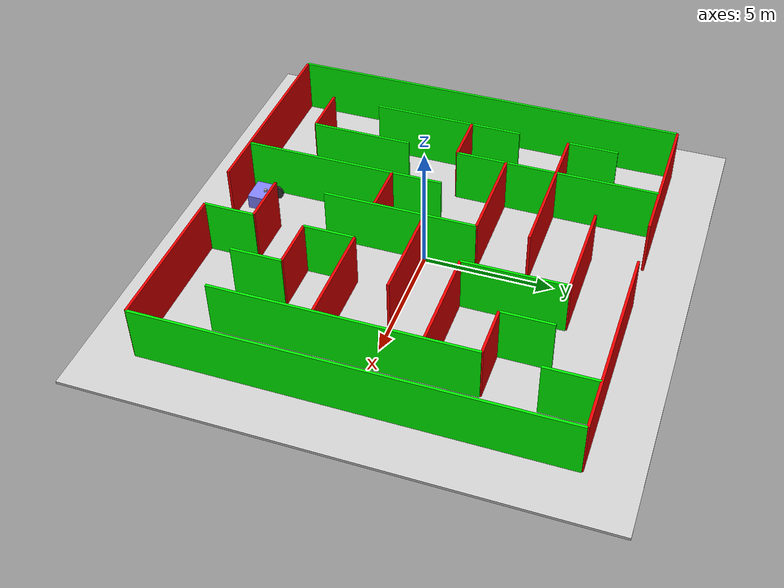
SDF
<?xml version="1.0" ?>
<!--
  You can echo lidar messages using:
    gz topic -e -t /lidar
-->
<sdf version="1.10">
  <world name="visualize_lidar_world">
    <physics name="1ms" type="ignored">
      <max_step_size>0.01</max_step_size>
      <real_time_factor>1.0</real_time_factor>
    </physics>
    <plugin
      filename="gz-sim-physics-system"
      name="gz::sim::systems::Physics">
    </plugin>
    <plugin
      filename="gz-sim-sensors-system"
      name="gz::sim::systems::Sensors">
      <render_engine>ogre2</render_engine>
    </plugin>
    <plugin
      filename="gz-sim-scene-broadcaster-system"
      name="gz::sim::systems::SceneBroadcaster">
    </plugin>

    <gui fullscreen="true">

      <!-- 3D scene -->
      <plugin filename="MinimalScene" name="3D View">
        <gz-gui>
          <title>3D View</title>
          <property type="bool" key="showTitleBar">false</property>
          <property type="string" key="state">docked</property>
        </gz-gui>

        <engine>ogre2</engine>
        <scene>scene</scene>
        <ambient_light>0.4 0.4 0.4</ambient_light>
        <background_color>0.8 0.8 0.8</background_color>
        <camera_pose>0 0 10 0 1.570796 0</camera_pose>
      </plugin>

      <!-- Plugins that add functionality to the scene -->
      <plugin filename="EntityContextMenuPlugin" name="Entity context menu">
        <gz-gui>
          <property key="state" type="string">floating</property>
          <property key="width" type="double">5</property>
          <property key="height" type="double">5</property>
          <property key="showTitleBar" type="bool">false</property>
        </gz-gui>
      </plugin>
      <plugin filename="GzSceneManager" name="Scene Manager">
        <gz-gui>
          <property key="resizable" type="bool">false</property>
          <property key="width" type="double">5</property>
          <property key="height" type="double">5</property>
          <property key="state" type="string">floating</property>
          <property key="showTitleBar" type="bool">false</property>
        </gz-gui>
      </plugin>
      <plugin filename="InteractiveViewControl" name="Interactive view control">
        <gz-gui>
          <property key="resizable" type="bool">false</property>
          <property key="width" type="double">5</property>
          <property key="height" type="double">5</property>
          <property key="state" type="string">floating</property>
          <property key="showTitleBar" type="bool">false</property>
        </gz-gui>
      </plugin>
      <plugin filename="CameraTracking" name="Camera Tracking">
        <gz-gui>
          <property key="resizable" type="bool">false</property>
          <property key="width" type="double">5</property>
          <property key="height" type="double">5</property>
          <property key="state" type="string">floating</property>
          <property key="showTitleBar" type="bool">false</property>
        </gz-gui>
      </plugin>
      <!-- World control -->
      <plugin filename="WorldControl" name="World control">
        <gz-gui>
          <title>World control</title>
          <property type="bool" key="showTitleBar">false</property>
          <property type="bool" key="resizable">false</property>
          <property type="double" key="height">72</property>
          <property type="double" key="z">1</property>

          <property type="string" key="state">floating</property>
          <anchors target="3D View">
            <line own="left" target="left"/>
            <line own="bottom" target="bottom"/>
          </anchors>
        </gz-gui>

        <play_pause>true</play_pause>
        <step>true</step>
        <start_paused>true</start_paused>
        <use_event>true</use_event>

      </plugin>

      <!-- World statistics -->
      <plugin filename="WorldStats" name="World stats">
        <gz-gui>
          <title>World stats</title>
          <property type="bool" key="showTitleBar">false</property>
          <property type="bool" key="resizable">false</property>
          <property type="double" key="height">110</property>
          <property type="double" key="width">290</property>
          <property type="double" key="z">1</property>

          <property type="string" key="state">floating</property>
          <anchors target="3D View">
            <line own="right" target="right"/>
            <line own="bottom" target="bottom"/>
          </anchors>
        </gz-gui>

        <sim_time>true</sim_time>
        <real_time>true</real_time>
        <real_time_factor>true</real_time_factor>
        <iterations>true</iterations>
      </plugin>

    </gui>

    <light type="directional" name="sun">
      <cast_shadows>true</cast_shadows>
      <pose>0 0 10 0 0 0</pose>
      <diffuse>0.8 0.8 0.8 1</diffuse>
      <specular>0.2 0.2 0.2 1</specular>
      <attenuation>
        <range>1000</range>
        <constant>0.9</constant>
        <linear>0.01</linear>
        <quadratic>0.001</quadratic>
      </attenuation>
      <direction>-0.5 0.1 -0.9</direction>
    </light>

    <model name="ground_plane">
      <pose>0 0 0 0 0 0</pose>
      <static>true</static>
      <link name="link">
        <collision name="collision">
          <geometry>
            <box>
              <size>18 18 0.1</size>
            </box>
          </geometry>
        </collision>
        <visual name="visual">
          <geometry>
            <box>
              <size>20 20 0.1</size>
            </box>
          </geometry>
          <material>
            <ambient>0.8 0.8 0.8 1</ambient>
            <diffuse>0.8 0.8 0.8 1</diffuse>
            <specular>0.8 0.8 0.8 1</specular>
          </material>
        </visual>
      </link>
    </model>

    <model name='vehicle_blue'>
      <pose>-1 -7 0.325 0 0 1.57</pose>
      <link name='chassis'>
        <pose>-0.151427 -0 0.175 0 -0 0</pose>
        <inertial>
          <mass>1.14395</mass>
          <inertia>
            <ixx>0.126164</ixx>
            <ixy>0</ixy>
            <ixz>0</ixz>
            <iyy>0.416519</iyy>
            <iyz>0</iyz>
            <izz>0.481014</izz>
          </inertia>
        </inertial>
        <visual name='visual'>
          <geometry>
            <box>
              <size>0.8 1 0.568726</size>
            </box>
          </geometry>
          <material>
            <ambient>0.5 0.5 1.0 1</ambient>
            <diffuse>0.5 0.5 1.0 1</diffuse>
            <specular>0.0 0.0 1.0 1</specular>
          </material>
        </visual>
        <collision name='collision'>
          <geometry>
            <box>
              <size>0.8 1 0.568726</size>
            </box>
          </geometry>
        </collision>
      </link>

      <link name="lidar_link">
        <pose>0 0 0.5 0 0 0</pose>
        <inertial>
          <mass>0.1</mass>
          <inertia>
            <ixx>0.000166667</ixx>
            <iyy>0.000166667</iyy>
            <izz>0.000166667</izz>
          </inertia>
        </inertial>
        <collision name="collision">
          <geometry>
            <box>
              <size>0.1 0.1 0.1</size>
            </box>
          </geometry>
        </collision>
        <visual name="visual">
          <geometry>
            <box>
              <size>0.1 0.1 0.1</size>
            </box>
          </geometry>
        </visual>
        <sensor name='gpu_lidar' type='gpu_lidar'>
        <pose>0 0 0 0 0 0</pose>
          <topic>lidar</topic>
          <update_rate>10</update_rate>
          <lidar>
            <scan>
              <horizontal>
                <samples>80</samples>
                <resolution>1</resolution>
                <min_angle>0</min_angle>
                <max_angle>6.28</max_angle>
              </horizontal>
              <vertical>
                <samples>1</samples>
                <resolution>1</resolution>
                <min_angle>0.0</min_angle>
                <max_angle>0.0</max_angle>
              </vertical>
            </scan>
            <range>
              <min>0.08</min>
              <max>12</max>
              <resolution>0.005</resolution>
            </range>
          </lidar>
        </sensor>
      </link>

      <link name='left_wheel'>
        <pose>0.154283 0.625029 -0.025 -1.5707 0 0</pose>
        <inertial>
          <mass>2</mass>
          <inertia>
            <ixx>0.145833</ixx>
            <ixy>0</ixy>
            <ixz>0</ixz>
            <iyy>0.145833</iyy>
            <iyz>0</iyz>
            <izz>0.125</izz>
          </inertia>
        </inertial>
        <visual name='visual'>
          <geometry>
            <cylinder>
              <radius>0.3</radius>
              <length>0.1</length>
            </cylinder>
          </geometry>
          <material>
            <ambient>0.2 0.2 0.2 1</ambient>
            <diffuse>0.2 0.2 0.2 1</diffuse>
            <specular>0.2 0.2 0.2 1</specular>
          </material>
        </visual>
        <collision name='collision'>
          <geometry>
            <cylinder>
              <radius>0.3</radius>
              <length>0.1</length>
            </cylinder>
          </geometry>
        </collision>
      </link>

      <link name='right_wheel'>
        <pose>0.154282 -0.625029 -0.025 -1.5707 0 0</pose>
        <inertial>
          <mass>2</mass>
          <inertia>
            <ixx>0.145833</ixx>
            <ixy>0</ixy>
            <ixz>0</ixz>
            <iyy>0.145833</iyy>
            <iyz>0</iyz>
            <izz>0.125</izz>
          </inertia>
        </inertial>
        <visual name='visual'>
          <geometry>
            <cylinder>
              <radius>0.3</radius>
              <length>0.1</length>
            </cylinder>
          </geometry>
          <material>
            <ambient>0.2 0.2 0.2 1</ambient>
            <diffuse>0.2 0.2 0.2 1</diffuse>
            <specular>0.2 0.2 0.2 1</specular>
          </material>
        </visual>
        <collision name='collision'>
          <geometry>
            <cylinder>
              <radius>0.3</radius>
              <length>0.1</length>
            </cylinder>
          </geometry>
        </collision>
      </link>

      <link name='caster'>
        <pose>-0.457138 -0 -0.125 0 -0 0</pose>
        <inertial>
          <mass>1</mass>
          <inertia>
            <ixx>0.1</ixx>
            <ixy>0</ixy>
            <ixz>0</ixz>
            <iyy>0.1</iyy>
            <iyz>0</iyz>
            <izz>0.1</izz>
          </inertia>
        </inertial>
        <visual name='visual'>
          <geometry>
            <sphere>
              <radius>0.2</radius>
            </sphere>
          </geometry>
          <material>
            <ambient>0.2 0.2 0.2 1</ambient>
            <diffuse>0.2 0.2 0.2 1</diffuse>
            <specular>0.2 0.2 0.2 1</specular>
          </material>
        </visual>
        <collision name='collision'>
          <geometry>
            <sphere>
              <radius>0.2</radius>
            </sphere>
          </geometry>
        </collision>
      </link>

      <joint name='lidar_sensor_joint' type='fixed'>
        <parent>chassis</parent>
        <child>lidar_link</child>
      </joint>

      <joint name='left_wheel_joint' type='revolute'>
        <parent>chassis</parent>
        <child>left_wheel</child>
        <axis>
          <xyz>0 0 1</xyz>
          <limit>
            <lower>-1.79769e+308</lower>
            <upper>1.79769e+308</upper>
          </limit>
        </axis>
      </joint>

      <joint name='right_wheel_joint' type='revolute'>
        <parent>chassis</parent>
        <child>right_wheel</child>
        <axis>
          <xyz>0 0 1</xyz>
          <limit>
            <lower>-1.79769e+308</lower>
            <upper>1.79769e+308</upper>
          </limit>
        </axis>
      </joint>

      <joint name='caster_wheel' type='ball'>
        <parent>chassis</parent>
        <child>caster</child>
      </joint>

      <plugin
        filename="gz-sim-diff-drive-system"
        name="gz::sim::systems::DiffDrive">
        <left_joint>left_wheel_joint</left_joint>
        <right_joint>right_wheel_joint</right_joint>
        <wheel_separation>1.25</wheel_separation>
        <wheel_radius>0.3</wheel_radius>
        <odom_publish_frequency>50</odom_publish_frequency>
      </plugin>
    </model>

    <include>
      <pose>-8 -8 0 0 0 0</pose>
      <uri>sim/maze2.sdf</uri>
    </include>
  </world>
</sdf>

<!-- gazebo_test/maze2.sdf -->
<sdf version="1.6">
  <model name="maze2">
    <static>true</static>
        <link name="floor">
            <pose>8.0 8.0 0 0 0 0</pose>
            <collision name="floor_collision">
                <geometry>
                <plane>
                    <normal>0 0 1</normal>
                    <size>16.0 16.0</size>
                </plane>
                </geometry>
            </collision>
            <visual name="floor_visual">
                <geometry>
                <plane>
                    <normal>0 0 1</normal>
                    <size>16.0 16.0</size>
                </plane>
                </geometry>
            </visual>
        </link>    <link name="wall_0">
      <pose>4.0 0.0 1.0 0 0 0</pose>
      <collision name="wall_0_collision">
        <geometry>
          <box>
            <size>8.0 0.1 2.5</size>
          </box>
        </geometry>
      </collision>
      <visual name="wall_0_visual">
        <geometry>
          <box>
            <size>8.0 0.1 2.5</size>
          </box>
        </geometry>
        <material>
          <ambient>1 0 0 1</ambient>
          <diffuse>1 0 0 1</diffuse>
          <specular>0.1 0.1 0.1 1</specular>
          <emissive>0 0 0 1</emissive>
        </material>
      </visual>
    </link>    <link name="wall_1">
      <pose>13.0 0.0 1.0 0 0 0</pose>
      <collision name="wall_1_collision">
        <geometry>
          <box>
            <size>6.0 0.1 2.5</size>
          </box>
        </geometry>
      </collision>
      <visual name="wall_1_visual">
        <geometry>
          <box>
            <size>6.0 0.1 2.5</size>
          </box>
        </geometry>
        <material>
          <ambient>1 0 0 1</ambient>
          <diffuse>1 0 0 1</diffuse>
          <specular>0.1 0.1 0.1 1</specular>
          <emissive>0 0 0 1</emissive>
        </material>
      </visual>
    </link>    <link name="wall_2">
      <pose>0.0 8.0 1.0 0 0 1.5707963267948966</pose>
      <collision name="wall_2_collision">
        <geometry>
          <box>
            <size>16.0 0.1 2.5</size>
          </box>
        </geometry>
      </collision>
      <visual name="wall_2_visual">
        <geometry>
          <box>
            <size>16.0 0.1 2.5</size>
          </box>
        </geometry>
        <material>
          <ambient>0 1 0 1</ambient>
          <diffuse>0 1 0 1</diffuse>
          <specular>0.1 0.1 0.1 1</specular>
          <emissive>0 0 0 1</emissive>
        </material>
      </visual>
    </link>    <link name="wall_3">
      <pose>16.0 8.0 1.0 0 0 1.5707963267948966</pose>
      <collision name="wall_3_collision">
        <geometry>
          <box>
            <size>16.0 0.1 2.5</size>
          </box>
        </geometry>
      </collision>
      <visual name="wall_3_visual">
        <geometry>
          <box>
            <size>16.0 0.1 2.5</size>
          </box>
        </geometry>
        <material>
          <ambient>0 1 0 1</ambient>
          <diffuse>0 1 0 1</diffuse>
          <specular>0.1 0.1 0.1 1</specular>
          <emissive>0 0 0 1</emissive>
        </material>
      </visual>
    </link>    <link name="wall_4">
      <pose>3.0 16.0 1.0 0 0 0</pose>
      <collision name="wall_4_collision">
        <geometry>
          <box>
            <size>6.0 0.1 2.5</size>
          </box>
        </geometry>
      </collision>
      <visual name="wall_4_visual">
        <geometry>
          <box>
            <size>6.0 0.1 2.5</size>
          </box>
        </geometry>
        <material>
          <ambient>1 0 0 1</ambient>
          <diffuse>1 0 0 1</diffuse>
          <specular>0.1 0.1 0.1 1</specular>
          <emissive>0 0 0 1</emissive>
        </material>
      </visual>
    </link>    <link name="wall_5">
      <pose>12.0 16.0 1.0 0 0 0</pose>
      <collision name="wall_5_collision">
        <geometry>
          <box>
            <size>8.0 0.1 2.5</size>
          </box>
        </geometry>
      </collision>
      <visual name="wall_5_visual">
        <geometry>
          <box>
            <size>8.0 0.1 2.5</size>
          </box>
        </geometry>
        <material>
          <ambient>1 0 0 1</ambient>
          <diffuse>1 0 0 1</diffuse>
          <specular>0.1 0.1 0.1 1</specular>
          <emissive>0 0 0 1</emissive>
        </material>
      </visual>
    </link>    <link name="wall_6">
      <pose>3.0 2.0 1.0 0 0 0</pose>
      <collision name="wall_6_collision">
        <geometry>
          <box>
            <size>2.0 0.1 2.5</size>
          </box>
        </geometry>
      </collision>
      <visual name="wall_6_visual">
        <geometry>
          <box>
            <size>2.0 0.1 2.5</size>
          </box>
        </geometry>
        <material>
          <ambient>1 0 0 1</ambient>
          <diffuse>1 0 0 1</diffuse>
          <specular>0.1 0.1 0.1 1</specular>
          <emissive>0 0 0 1</emissive>
        </material>
      </visual>
    </link>    <link name="wall_7">
      <pose>4.0 4.0 1.0 0 0 1.5707963267948966</pose>
      <collision name="wall_7_collision">
        <geometry>
          <box>
            <size>4.0 0.1 2.5</size>
          </box>
        </geometry>
      </collision>
      <visual name="wall_7_visual">
        <geometry>
          <box>
            <size>4.0 0.1 2.5</size>
          </box>
        </geometry>
        <material>
          <ambient>0 1 0 1</ambient>
          <diffuse>0 1 0 1</diffuse>
          <specular>0.1 0.1 0.1 1</specular>
          <emissive>0 0 0 1</emissive>
        </material>
      </visual>
    </link>    <link name="wall_8">
      <pose>7.0 6.0 1.0 0 0 0</pose>
      <collision name="wall_8_collision">
        <geometry>
          <box>
            <size>2.0 0.1 2.5</size>
          </box>
        </geometry>
      </collision>
      <visual name="wall_8_visual">
        <geometry>
          <box>
            <size>2.0 0.1 2.5</size>
          </box>
        </geometry>
        <material>
          <ambient>1 0 0 1</ambient>
          <diffuse>1 0 0 1</diffuse>
          <specular>0.1 0.1 0.1 1</specular>
          <emissive>0 0 0 1</emissive>
        </material>
      </visual>
    </link>    <link name="wall_9">
      <pose>6.0 4.0 1.0 0 0 1.5707963267948966</pose>
      <collision name="wall_9_collision">
        <geometry>
          <box>
            <size>8.0 0.1 2.5</size>
          </box>
        </geometry>
      </collision>
      <visual name="wall_9_visual">
        <geometry>
          <box>
            <size>8.0 0.1 2.5</size>
          </box>
        </geometry>
        <material>
          <ambient>0 1 0 1</ambient>
          <diffuse>0 1 0 1</diffuse>
          <specular>0.1 0.1 0.1 1</specular>
          <emissive>0 0 0 1</emissive>
        </material>
      </visual>
    </link>    <link name="wall_10">
      <pose>9.0 2.0 1.0 0 0 0</pose>
      <collision name="wall_10_collision">
        <geometry>
          <box>
            <size>2.0 0.1 2.5</size>
          </box>
        </geometry>
      </collision>
      <visual name="wall_10_visual">
        <geometry>
          <box>
            <size>2.0 0.1 2.5</size>
          </box>
        </geometry>
        <material>
          <ambient>1 0 0 1</ambient>
          <diffuse>1 0 0 1</diffuse>
          <specular>0.1 0.1 0.1 1</specular>
          <emissive>0 0 0 1</emissive>
        </material>
      </visual>
    </link>    <link name="wall_11">
      <pose>10.0 1.0 1.0 0 0 1.5707963267948966</pose>
      <collision name="wall_11_collision">
        <geometry>
          <box>
            <size>2.0 0.1 2.5</size>
          </box>
        </geometry>
      </collision>
      <visual name="wall_11_visual">
        <geometry>
          <box>
            <size>2.0 0.1 2.5</size>
          </box>
        </geometry>
        <material>
          <ambient>0 1 0 1</ambient>
          <diffuse>0 1 0 1</diffuse>
          <specular>0.1 0.1 0.1 1</specular>
          <emissive>0 0 0 1</emissive>
        </material>
      </visual>
    </link>    <link name="wall_12">
      <pose>2.0 7.0 1.0 0 0 1.5707963267948966</pose>
      <collision name="wall_12_collision">
        <geometry>
          <box>
            <size>6.0 0.1 2.5</size>
          </box>
        </geometry>
      </collision>
      <visual name="wall_12_visual">
        <geometry>
          <box>
            <size>6.0 0.1 2.5</size>
          </box>
        </geometry>
        <material>
          <ambient>0 1 0 1</ambient>
          <diffuse>0 1 0 1</diffuse>
          <specular>0.1 0.1 0.1 1</specular>
          <emissive>0 0 0 1</emissive>
        </material>
      </visual>
    </link>    <link name="wall_13">
      <pose>3.0 8.0 1.0 0 0 0</pose>
      <collision name="wall_13_collision">
        <geometry>
          <box>
            <size>2.0 0.1 2.5</size>
          </box>
        </geometry>
      </collision>
      <visual name="wall_13_visual">
        <geometry>
          <box>
            <size>2.0 0.1 2.5</size>
          </box>
        </geometry>
        <material>
          <ambient>1 0 0 1</ambient>
          <diffuse>1 0 0 1</diffuse>
          <specular>0.1 0.1 0.1 1</specular>
          <emissive>0 0 0 1</emissive>
        </material>
      </visual>
    </link>    <link name="wall_14">
      <pose>4.0 12.0 1.0 0 0 1.5707963267948966</pose>
      <collision name="wall_14_collision">
        <geometry>
          <box>
            <size>8.0 0.1 2.5</size>
          </box>
        </geometry>
      </collision>
      <visual name="wall_14_visual">
        <geometry>
          <box>
            <size>8.0 0.1 2.5</size>
          </box>
        </geometry>
        <material>
          <ambient>0 1 0 1</ambient>
          <diffuse>0 1 0 1</diffuse>
          <specular>0.1 0.1 0.1 1</specular>
          <emissive>0 0 0 1</emissive>
        </material>
      </visual>
    </link>    <link name="wall_15">
      <pose>2.0 13.0 1.0 0 0 1.5707963267948966</pose>
      <collision name="wall_15_collision">
        <geometry>
          <box>
            <size>2.0 0.1 2.5</size>
          </box>
        </geometry>
      </collision>
      <visual name="wall_15_visual">
        <geometry>
          <box>
            <size>2.0 0.1 2.5</size>
          </box>
        </geometry>
        <material>
          <ambient>0 1 0 1</ambient>
          <diffuse>0 1 0 1</diffuse>
          <specular>0.1 0.1 0.1 1</specular>
          <emissive>0 0 0 1</emissive>
        </material>
      </visual>
    </link>    <link name="wall_16">
      <pose>3.0 12.0 1.0 0 0 0</pose>
      <collision name="wall_16_collision">
        <geometry>
          <box>
            <size>2.0 0.1 2.5</size>
          </box>
        </geometry>
      </collision>
      <visual name="wall_16_visual">
        <geometry>
          <box>
            <size>2.0 0.1 2.5</size>
          </box>
        </geometry>
        <material>
          <ambient>1 0 0 1</ambient>
          <diffuse>1 0 0 1</diffuse>
          <specular>0.1 0.1 0.1 1</specular>
          <emissive>0 0 0 1</emissive>
        </material>
      </visual>
    </link>    <link name="wall_17">
      <pose>6.0 10.0 1.0 0 0 0</pose>
      <collision name="wall_17_collision">
        <geometry>
          <box>
            <size>4.0 0.1 2.5</size>
          </box>
        </geometry>
      </collision>
      <visual name="wall_17_visual">
        <geometry>
          <box>
            <size>4.0 0.1 2.5</size>
          </box>
        </geometry>
        <material>
          <ambient>1 0 0 1</ambient>
          <diffuse>1 0 0 1</diffuse>
          <specular>0.1 0.1 0.1 1</specular>
          <emissive>0 0 0 1</emissive>
        </material>
      </visual>
    </link>    <link name="wall_18">
      <pose>8.0 7.0 1.0 0 0 1.5707963267948966</pose>
      <collision name="wall_18_collision">
        <geometry>
          <box>
            <size>6.0 0.1 2.5</size>
          </box>
        </geometry>
      </collision>
      <visual name="wall_18_visual">
        <geometry>
          <box>
            <size>6.0 0.1 2.5</size>
          </box>
        </geometry>
        <material>
          <ambient>0 1 0 1</ambient>
          <diffuse>0 1 0 1</diffuse>
          <specular>0.1 0.1 0.1 1</specular>
          <emissive>0 0 0 1</emissive>
        </material>
      </visual>
    </link>    <link name="wall_19">
      <pose>10.0 8.0 1.0 0 0 0</pose>
      <collision name="wall_19_collision">
        <geometry>
          <box>
            <size>4.0 0.1 2.5</size>
          </box>
        </geometry>
      </collision>
      <visual name="wall_19_visual">
        <geometry>
          <box>
            <size>4.0 0.1 2.5</size>
          </box>
        </geometry>
        <material>
          <ambient>1 0 0 1</ambient>
          <diffuse>1 0 0 1</diffuse>
          <specular>0.1 0.1 0.1 1</specular>
          <emissive>0 0 0 1</emissive>
        </material>
      </visual>
    </link>    <link name="wall_20">
      <pose>12.0 3.0 1.0 0 0 1.5707963267948966</pose>
      <collision name="wall_20_collision">
        <geometry>
          <box>
            <size>2.0 0.1 2.5</size>
          </box>
        </geometry>
      </collision>
      <visual name="wall_20_visual">
        <geometry>
          <box>
            <size>2.0 0.1 2.5</size>
          </box>
        </geometry>
        <material>
          <ambient>0 1 0 1</ambient>
          <diffuse>0 1 0 1</diffuse>
          <specular>0.1 0.1 0.1 1</specular>
          <emissive>0 0 0 1</emissive>
        </material>
      </visual>
    </link>    <link name="wall_21">
      <pose>11.0 4.0 1.0 0 0 0</pose>
      <collision name="wall_21_collision">
        <geometry>
          <box>
            <size>2.0 0.1 2.5</size>
          </box>
        </geometry>
      </collision>
      <visual name="wall_21_visual">
        <geometry>
          <box>
            <size>2.0 0.1 2.5</size>
          </box>
        </geometry>
        <material>
          <ambient>1 0 0 1</ambient>
          <diffuse>1 0 0 1</diffuse>
          <specular>0.1 0.1 0.1 1</specular>
          <emissive>0 0 0 1</emissive>
        </material>
      </visual>
    </link>    <link name="wall_22">
      <pose>10.0 5.0 1.0 0 0 1.5707963267948966</pose>
      <collision name="wall_22_collision">
        <geometry>
          <box>
            <size>2.0 0.1 2.5</size>
          </box>
        </geometry>
      </collision>
      <visual name="wall_22_visual">
        <geometry>
          <box>
            <size>2.0 0.1 2.5</size>
          </box>
        </geometry>
        <material>
          <ambient>0 1 0 1</ambient>
          <diffuse>0 1 0 1</diffuse>
          <specular>0.1 0.1 0.1 1</specular>
          <emissive>0 0 0 1</emissive>
        </material>
      </visual>
    </link>    <link name="wall_23">
      <pose>12.0 6.0 1.0 0 0 0</pose>
      <collision name="wall_23_collision">
        <geometry>
          <box>
            <size>4.0 0.1 2.5</size>
          </box>
        </geometry>
      </collision>
      <visual name="wall_23_visual">
        <geometry>
          <box>
            <size>4.0 0.1 2.5</size>
          </box>
        </geometry>
        <material>
          <ambient>1 0 0 1</ambient>
          <diffuse>1 0 0 1</diffuse>
          <specular>0.1 0.1 0.1 1</specular>
          <emissive>0 0 0 1</emissive>
        </material>
      </visual>
    </link>    <link name="wall_24">
      <pose>14.0 7.0 1.0 0 0 1.5707963267948966</pose>
      <collision name="wall_24_collision">
        <geometry>
          <box>
            <size>10.0 0.1 2.5</size>
          </box>
        </geometry>
      </collision>
      <visual name="wall_24_visual">
        <geometry>
          <box>
            <size>10.0 0.1 2.5</size>
          </box>
        </geometry>
        <material>
          <ambient>0 1 0 1</ambient>
          <diffuse>0 1 0 1</diffuse>
          <specular>0.1 0.1 0.1 1</specular>
          <emissive>0 0 0 1</emissive>
        </material>
      </visual>
    </link>    <link name="wall_25">
      <pose>13.0 12.0 1.0 0 0 0</pose>
      <collision name="wall_25_collision">
        <geometry>
          <box>
            <size>2.0 0.1 2.5</size>
          </box>
        </geometry>
      </collision>
      <visual name="wall_25_visual">
        <geometry>
          <box>
            <size>2.0 0.1 2.5</size>
          </box>
        </geometry>
        <material>
          <ambient>1 0 0 1</ambient>
          <diffuse>1 0 0 1</diffuse>
          <specular>0.1 0.1 0.1 1</specular>
          <emissive>0 0 0 1</emissive>
        </material>
      </visual>
    </link>    <link name="wall_26">
      <pose>14.0 15.0 1.0 0 0 1.5707963267948966</pose>
      <collision name="wall_26_collision">
        <geometry>
          <box>
            <size>2.0 0.1 2.5</size>
          </box>
        </geometry>
      </collision>
      <visual name="wall_26_visual">
        <geometry>
          <box>
            <size>2.0 0.1 2.5</size>
          </box>
        </geometry>
        <material>
          <ambient>0 1 0 1</ambient>
          <diffuse>0 1 0 1</diffuse>
          <specular>0.1 0.1 0.1 1</specular>
          <emissive>0 0 0 1</emissive>
        </material>
      </visual>
    </link>    <link name="wall_27">
      <pose>10.0 12.0 1.0 0 0 1.5707963267948966</pose>
      <collision name="wall_27_collision">
        <geometry>
          <box>
            <size>4.0 0.1 2.5</size>
          </box>
        </geometry>
      </collision>
      <visual name="wall_27_visual">
        <geometry>
          <box>
            <size>4.0 0.1 2.5</size>
          </box>
        </geometry>
        <material>
          <ambient>0 1 0 1</ambient>
          <diffuse>0 1 0 1</diffuse>
          <specular>0.1 0.1 0.1 1</specular>
          <emissive>0 0 0 1</emissive>
        </material>
      </visual>
    </link>    <link name="wall_28">
      <pose>12.0 10.0 1.0 0 0 0</pose>
      <collision name="wall_28_collision">
        <geometry>
          <box>
            <size>4.0 0.1 2.5</size>
          </box>
        </geometry>
      </collision>
      <visual name="wall_28_visual">
        <geometry>
          <box>
            <size>4.0 0.1 2.5</size>
          </box>
        </geometry>
        <material>
          <ambient>1 0 0 1</ambient>
          <diffuse>1 0 0 1</diffuse>
          <specular>0.1 0.1 0.1 1</specular>
          <emissive>0 0 0 1</emissive>
        </material>
      </visual>
    </link>    <link name="wall_29">
      <pose>6.0 12.0 1.0 0 0 0</pose>
      <collision name="wall_29_collision">
        <geometry>
          <box>
            <size>4.0 0.1 2.5</size>
          </box>
        </geometry>
      </collision>
      <visual name="wall_29_visual">
        <geometry>
          <box>
            <size>4.0 0.1 2.5</size>
          </box>
        </geometry>
        <material>
          <ambient>1 0 0 1</ambient>
          <diffuse>1 0 0 1</diffuse>
          <specular>0.1 0.1 0.1 1</specular>
          <emissive>0 0 0 1</emissive>
        </material>
      </visual>
    </link>    <link name="wall_30">
      <pose>8.0 14.0 1.0 0 0 0</pose>
      <collision name="wall_30_collision">
        <geometry>
          <box>
            <size>4.0 0.1 2.5</size>
          </box>
        </geometry>
      </collision>
      <visual name="wall_30_visual">
        <geometry>
          <box>
            <size>4.0 0.1 2.5</size>
          </box>
        </geometry>
        <material>
          <ambient>1 0 0 1</ambient>
          <diffuse>1 0 0 1</diffuse>
          <specular>0.1 0.1 0.1 1</specular>
          <emissive>0 0 0 1</emissive>
        </material>
      </visual>
    </link>    <link name="wall_31">
      <pose>12.0 13.0 1.0 0 0 1.5707963267948966</pose>
      <collision name="wall_31_collision">
        <geometry>
          <box>
            <size>2.0 0.1 2.5</size>
          </box>
        </geometry>
      </collision>
      <visual name="wall_31_visual">
        <geometry>
          <box>
            <size>2.0 0.1 2.5</size>
          </box>
        </geometry>
        <material>
          <ambient>0 1 0 1</ambient>
          <diffuse>0 1 0 1</diffuse>
          <specular>0.1 0.1 0.1 1</specular>
          <emissive>0 0 0 1</emissive>
        </material>
      </visual>
    </link>
  </model>
</sdf>
